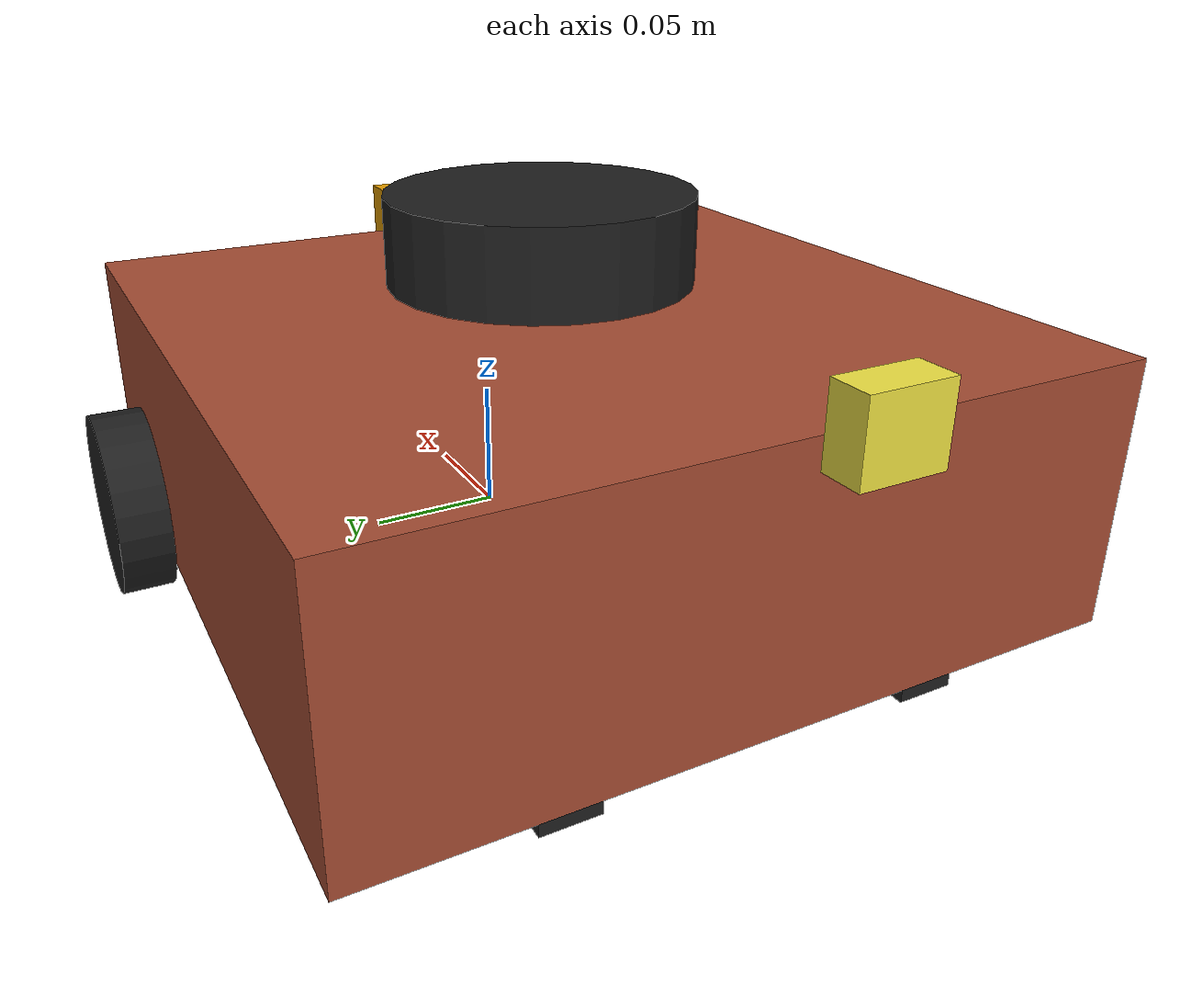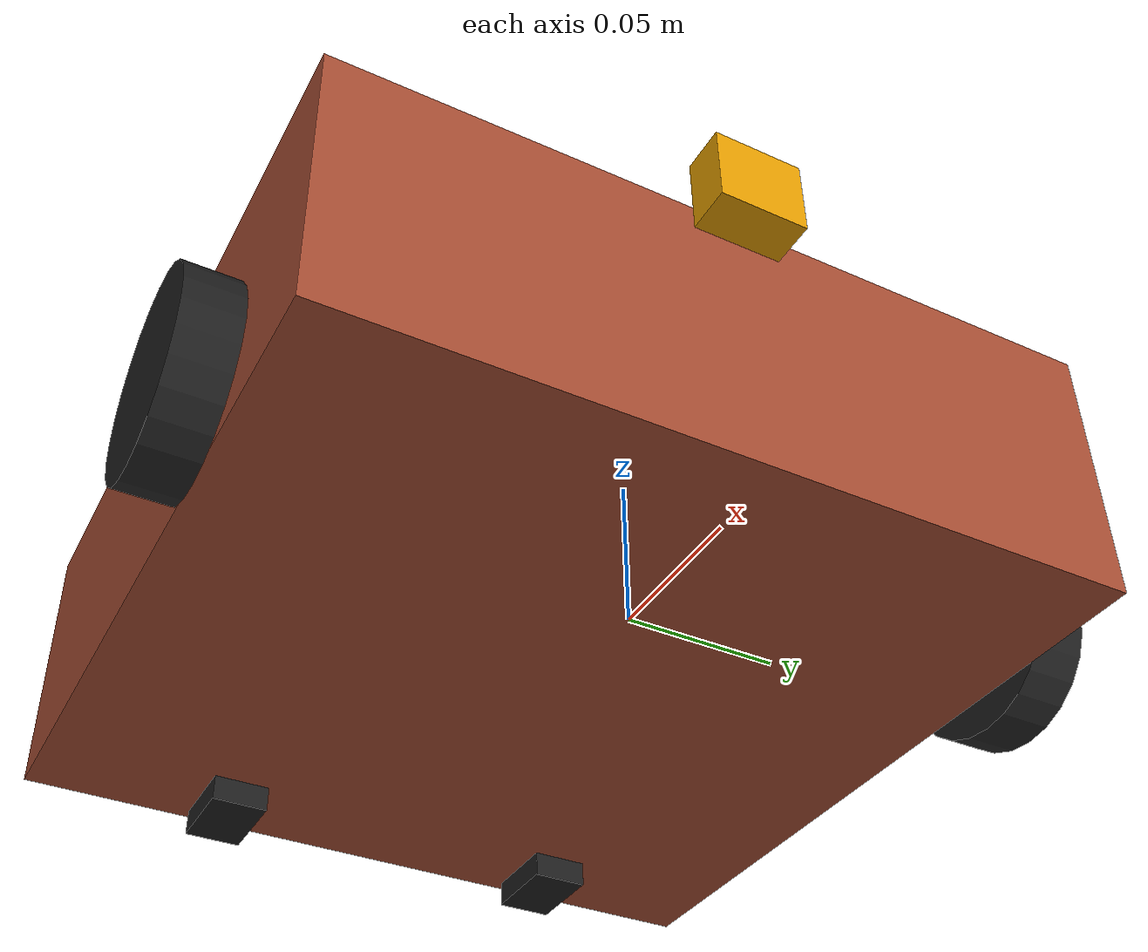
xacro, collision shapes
<?xml version="1.0" ?>
<robot name="p_vbatista" xmlns:xacro="http://ros.org/wiki/xacro">

    <!--Args: local, properties: global-->
  <xacro:arg name="player_name" default="p_vbatista" />
  <xacro:arg name="player_color" default="Bricks" />

  <xacro:property name="player_name" value="$(arg player_name)"/>
  <xacro:property name="player_color" value="$(arg player_color)"/>

  <xacro:include filename="$(find p_vbatista_description)/urdf/properties.xacro"/>
  <xacro:include filename="$(find p_vbatista_description)/urdf/p_vbatista.gazebo.macro.xacro"/>
  <xacro:gazebo_macro player_color="${player_color}" laser_visual="false" camera_visual="false" imu_visual="true"/>

<!--  Robot base-->
  <link name="base_link">
    <visual>
      <origin xyz="-0.064 0 0.0" rpy="0 0 0"/>
      <geometry>
        <mesh filename="package://turtlebot3_description/meshes/bases/waffle_pi_base.stl" scale="0.001 0.001 0.001"/>
      </geometry>
      <material name="$(arg player_color)"/>
    </visual>

    <collision>
      <origin xyz="-0.064 0 0.047" rpy="0 0 0"/>
      <geometry>
        <box size="0.266 0.266 0.094"/>
      </geometry>
    </collision>

    <inertial>
      <origin xyz="0 0 0" rpy="0 0 0"/>
      <mass value="1.3729096e+00"/>
      <inertia ixx="8.7002718e-03" ixy="-4.7576583e-05" ixz="1.1160499e-04"
               iyy="8.6195418e-03" iyz="-3.5422299e-06"
               izz="1.4612727e-02" />
    </inertial>
  </link>

<!--  Robot footprint-->
  <link name="base_footprint"/>

  <joint name="base_joint" type="fixed">
    <parent link="base_footprint"/>
    <child link="base_link" />
    <origin xyz="0 0 0.010" rpy="0 0 0"/>
  </joint>

<!--Wheels-->
  <joint name="wheel_left_joint" type="continuous">
    <parent link="base_link"/>
    <child link="wheel_left_link"/>
    <origin xyz="0.0 0.144 0.023" rpy="-1.57 0 0"/>
    <axis xyz="0 0 1"/>
  </joint>

  <link name="wheel_left_link">
    <visual>
      <origin xyz="0 0 0" rpy="1.57 0 0"/>
      <geometry>
        <mesh filename="package://turtlebot3_description/meshes/wheels/left_tire.stl" scale="0.001 0.001 0.001"/>
      </geometry>
      <material name="dark"/>
    </visual>

    <collision>
      <origin xyz="0 0 0" rpy="0 0 0"/>
      <geometry>
        <cylinder length="0.018" radius="0.033"/>
      </geometry>
    </collision>

    <inertial>
      <origin xyz="0 0 0" />
      <mass value="2.8498940e-02" />
      <inertia ixx="1.1175580e-05" ixy="-4.2369783e-11" ixz="-5.9381719e-09"
               iyy="1.1192413e-05" iyz="-1.4400107e-11"
               izz="2.0712558e-05" />
      </inertial>
  </link>

  <joint name="wheel_right_joint" type="continuous">
    <parent link="base_link"/>
    <child link="wheel_right_link"/>
    <origin xyz="0.0 -0.144 0.023" rpy="-1.57 0 0"/>
    <axis xyz="0 0 1"/>
  </joint>

  <link name="wheel_right_link">
    <visual>
      <origin xyz="0 0 0" rpy="1.57 0 0"/>
      <geometry>
        <mesh filename="package://turtlebot3_description/meshes/wheels/right_tire.stl" scale="0.001 0.001 0.001"/>
      </geometry>
      <material name="dark"/>
    </visual>

    <collision>
      <origin xyz="0 0 0" rpy="0 0 0"/>
      <geometry>
        <cylinder length="0.018" radius="0.033"/>
      </geometry>
    </collision>

    <inertial>
      <origin xyz="0 0 0" />
      <mass value="2.8498940e-02" />
      <inertia ixx="1.1175580e-05" ixy="-4.2369783e-11" ixz="-5.9381719e-09"
               iyy="1.1192413e-05" iyz="-1.4400107e-11"
               izz="2.0712558e-05" />
      </inertial>
  </link>

<!--Caster Wheel-->
  <joint name="caster_back_right_joint" type="fixed">
    <parent link="base_link"/>
    <child link="caster_back_right_link"/>
    <origin xyz="-0.177 -0.064 -0.004" rpy="-1.57 0 0"/>
  </joint>

  <link name="caster_back_right_link">
    <collision>
      <origin xyz="0 0.001 0" rpy="0 0 0"/>
      <geometry>
        <box size="0.030 0.009 0.020"/>
      </geometry>
    </collision>

    <inertial>
      <origin xyz="0 0 0" />
      <mass value="0.005" />
      <inertia ixx="0.001" ixy="0.0" ixz="0.0"
               iyy="0.001" iyz="0.0"
               izz="0.001" />
    </inertial>
  </link>

  <joint name="caster_back_left_joint" type="fixed">
    <parent link="base_link"/>
    <child link="caster_back_left_link"/>
    <origin xyz="-0.177 0.064 -0.004" rpy="-1.57 0 0"/>
  </joint>

  <link name="caster_back_left_link">
    <collision>
      <origin xyz="0 0.001 0" rpy="0 0 0"/>
      <geometry>
        <box size="0.030 0.009 0.020"/>
      </geometry>
    </collision>

    <inertial>
      <origin xyz="0 0 0" />
      <mass value="0.005" />
      <inertia ixx="0.001" ixy="0.0" ixz="0.0"
               iyy="0.001" iyz="0.0"
               izz="0.001" />
    </inertial>
  </link>

<!--  Joints-->
  <joint name="imu_joint" type="fixed">
    <parent link="base_link"/>
    <child link="imu_link"/>
    <origin xyz="0.0 0 0.068" rpy="0 0 0"/>
  </joint>

  <link name="imu_link"/>

  <joint name="scan_joint" type="fixed">
    <parent link="base_link"/>
    <child link="base_scan"/>
    <origin xyz="-0.064 0 0.122" rpy="0 0 0"/>
  </joint>

<!--  Scan-->
  <link name="base_scan">
    <visual>
      <origin xyz="0 0 0.0" rpy="0 0 0"/>
      <geometry>
        <mesh filename="package://turtlebot3_description/meshes/sensors/lds.stl" scale="0.001 0.001 0.001"/>
      </geometry>
      <material name="dark"/>
    </visual>

    <collision>
      <origin xyz="0.015 0 -0.0065" rpy="0 0 0"/>
      <geometry>
        <cylinder length="0.0315" radius="0.055"/>
      </geometry>
    </collision>

    <inertial>
      <mass value="0.114" />
      <origin xyz="0 0 0" />
      <inertia ixx="0.001" ixy="0.0" ixz="0.0"
               iyy="0.001" iyz="0.0"
               izz="0.001" />
    </inertial>
  </link>

<!--  Cameras-->

  <!-- Camera Front -->
  <joint name="camera_joint" type="fixed">
    <origin xyz="0.073 -0.011 0.084" rpy="0 0 0"/>
    <parent link="base_link"/>
    <child link="camera_link"/>
  </joint>

  <link name="camera_link">
    <collision>
      <origin xyz="0.005 0.011 0.013" rpy="0 0 0"/>
      <geometry>
        <box size="0.015 0.030 0.027"/>
      </geometry>
    </collision>
  </link>

  <joint name="camera_rgb_joint" type="fixed">
    <origin xyz="0.003 0.011 0.009" rpy="0 0 0"/>
    <parent link="camera_link"/>
    <child link="camera_rgb_frame"/>
  </joint>
  <link name="camera_rgb_frame"/>

  <joint name="camera_rgb_optical_joint" type="fixed">
    <origin xyz="0 0 0" rpy="-1.57 0 -1.57"/>
    <parent link="camera_rgb_frame"/>
    <child link="camera_rgb_optical_frame"/>
  </joint>
  <link name="camera_rgb_optical_frame"/>

  <!-- Camera Back -->
  <joint name="camera_joint_2" type="fixed">
    <origin xyz="-0.2 -0.011 0.084" rpy="0 0 -3.14"/>
    <parent link="base_link"/>
    <child link="camera_link_2"/>
  </joint>

  <link name="camera_link_2">
    <collision>
      <origin xyz="0.005 0.011 0.013" rpy="0 0 0"/>
      <geometry>
        <box size="0.015 0.030 0.027"/>
      </geometry>
    </collision>
  </link>

  <joint name="camera_rgb_joint_2" type="fixed">
    <origin xyz="0.003 0.011 0.009" rpy="0 0 0"/>
    <parent link="camera_link_2"/>
    <child link="camera_rgb_frame_2"/>
  </joint>
  <link name="camera_rgb_frame_2"/>

  <joint name="camera_rgb_optical_joint_2" type="fixed">
    <origin xyz="0 0 0" rpy="-1.57 0 -1.57"/>
    <parent link="camera_rgb_frame_2"/>
    <child link="camera_rgb_optical_frame_2"/>
  </joint>
  <link name="camera_rgb_optical_frame_2"/>

</robot>

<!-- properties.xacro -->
<robot name="properties" xmlns:xacro="http://ros.org/wiki/xacro">
    <!--Read common properties from turtlebot3 and then add missing stuff-->
    <xacro:include filename="$(find turtlebot3_description)/urdf/common_properties.xacro"/>

    <material name="Yellow">
        <color rgba="1.0 1.0 0.0 1.0"/>
    </material>

    <material name="Orange">
        <color rgba="1.0 0.4 0.0 1.0"/>
    </material>

    <material name="Whatever">
        <color rgba="0.1 0.6 0.9 1.0"/>
    </material>

<!--    RGB Colors-->

    <material name="Red">
        <color rgba="1.0 0.0 0.0 1.0"/>
    </material>

    <material name="Green">
        <color rgba="0.0 1.0 0.0 1.0"/>
    </material>

    <material name="Blue">
        <color rgba="0.0 0.0 1.0 1.0"/>
    </material>

</robot>
